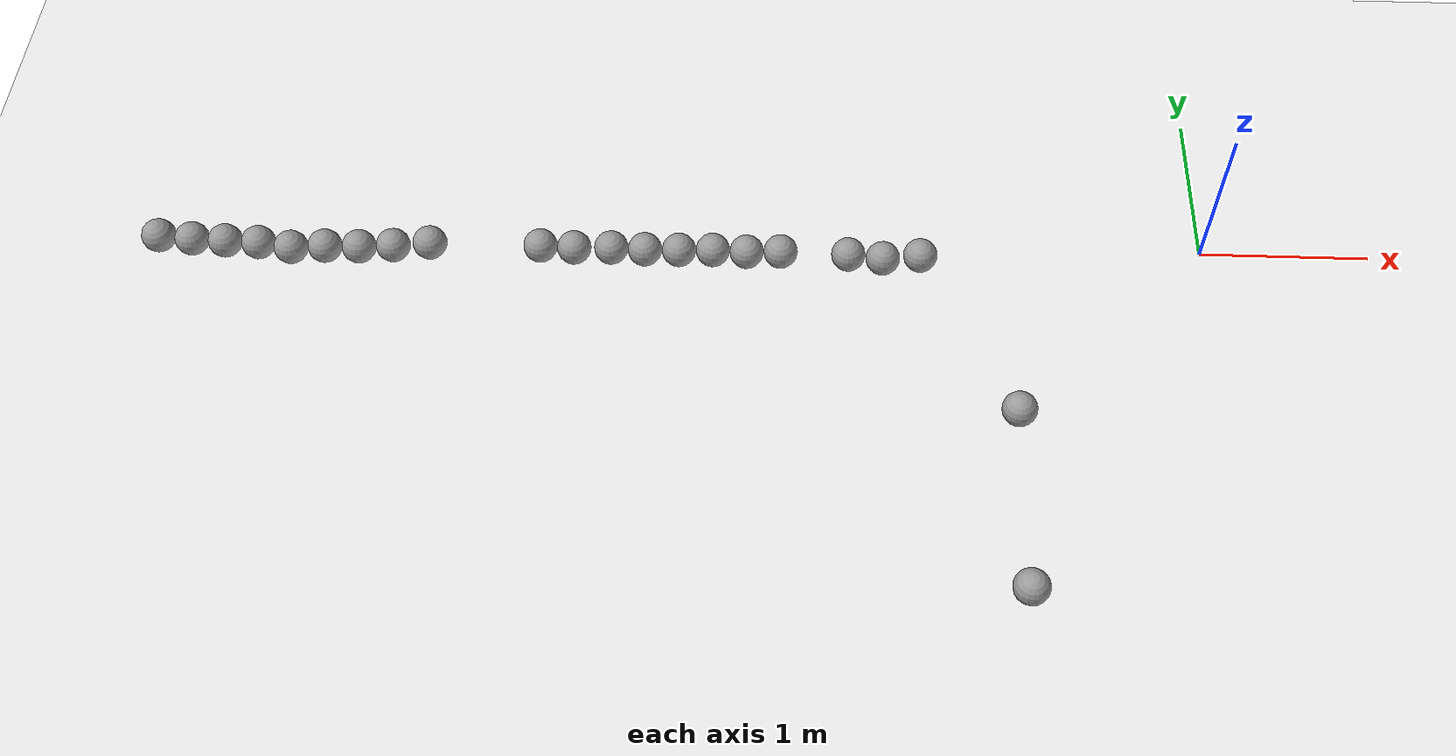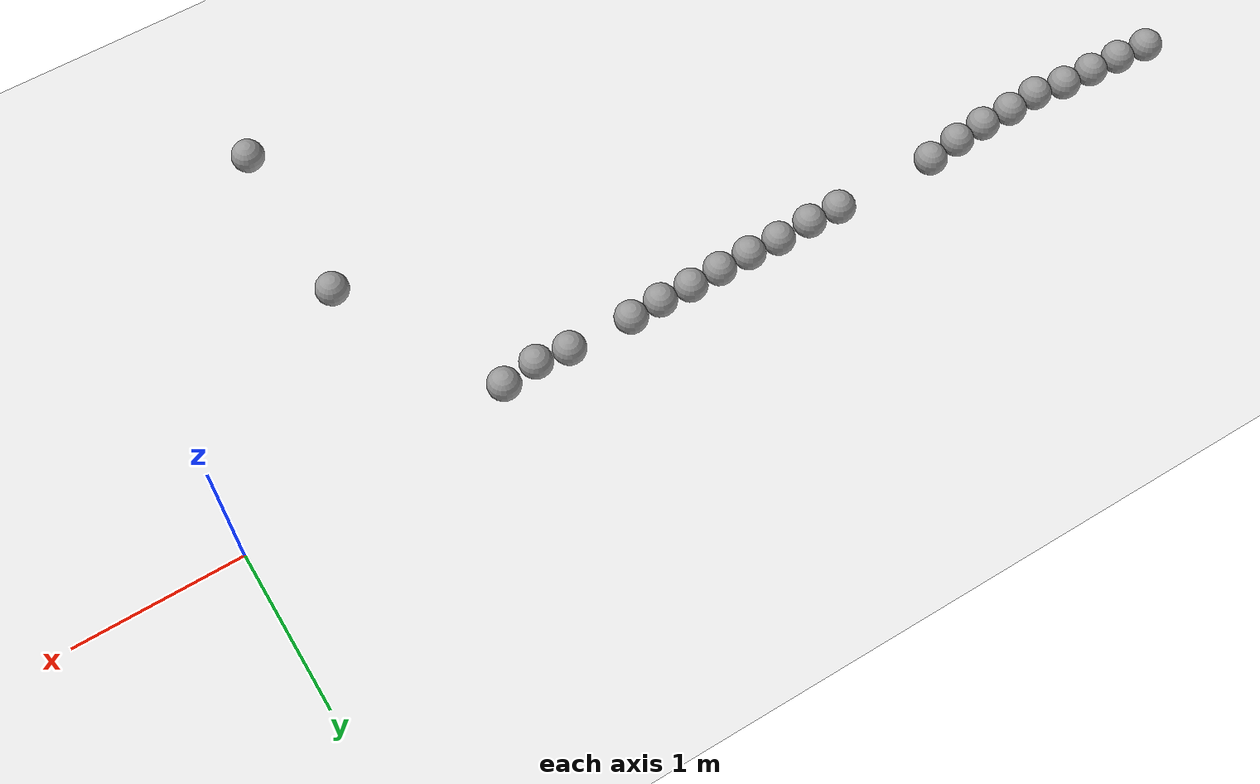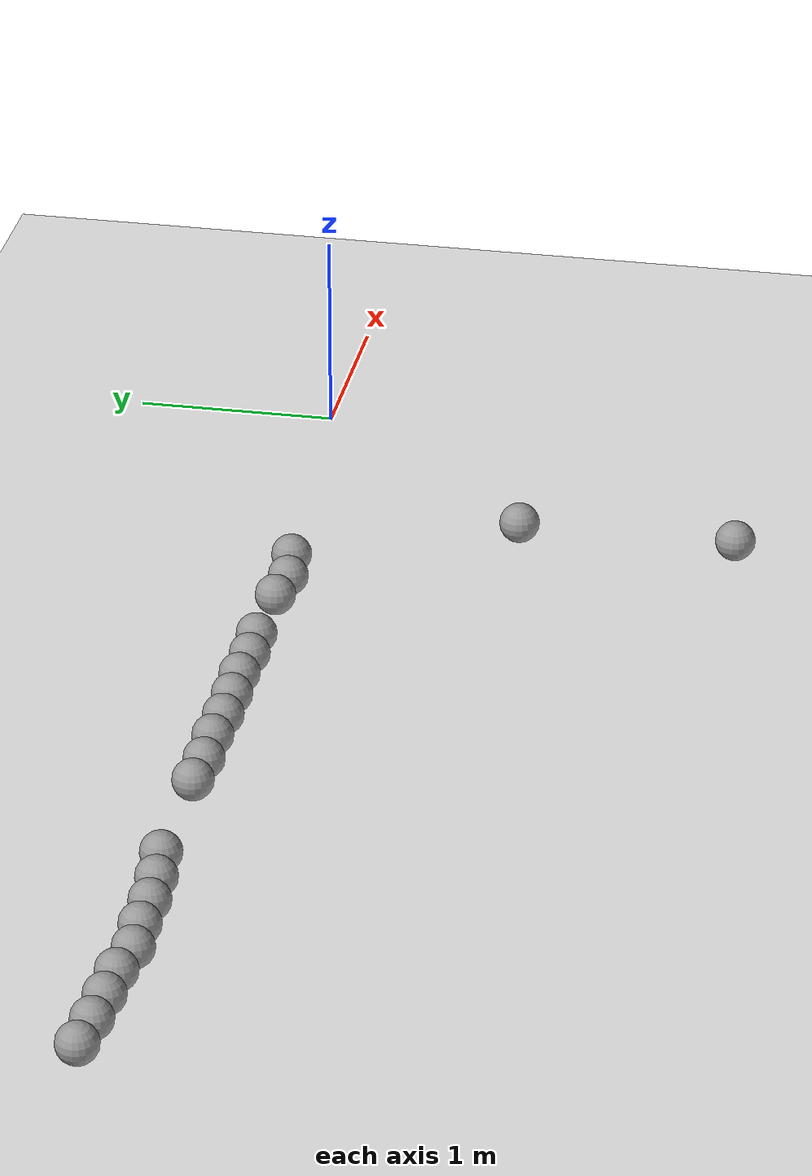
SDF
<sdf version="1.7">
 <world name="default">
  <model name="ground_plane">
   <static>1</static>
   <link name="link">
    <collision name="collision">
     <geometry><plane><normal>0 0 1</normal><size>100 100</size></plane></geometry>
     <surface>
      <contact><collide_bitmask>65535</collide_bitmask></contact>
      <friction><ode><mu>100</mu><mu2>50</mu2></ode></friction>
     </surface>
    </collision>
    <visual name="visual">
     <cast_shadows>0</cast_shadows>
     <geometry><plane><normal>0 0 1</normal><size>100 100</size></plane></geometry>
     <material>
      <script><uri>file://media/materials/scripts/gazebo.material</uri><name>Gazebo/White</name></script>
     </material>
    </visual>
   </link>
  </model>
  <model name="sphere_58">
   <link name="link_0">
    <inertial>
     <mass>1</mass>
     <inertia><ixx>0.1</ixx><ixy>0</ixy><ixz>0</ixz><iyy>0.1</iyy><iyz>0</iyz><izz>0.1</izz></inertia>
    </inertial>
    <visual name="visual">
     <geometry><sphere><radius>0.1</radius></sphere></geometry>
     <material>
      <lighting>1</lighting>
      <script><uri>file://media/materials/scripts/gazebo.material</uri><name>Gazebo/Grey</name></script>
      <shader type="pixel"><normal_map>__default__</normal_map></shader>
      <ambient>0.3 0.3 0.3 1</ambient>
      <diffuse>0.7 0.7 0.7 1</diffuse>
      <specular>0.01 0.01 0.01 1</specular>
      <emissive>0 0 0 1</emissive>
     </material>
    </visual>
    <collision name="collision">
     <geometry><sphere><radius>0.1</radius></sphere></geometry>
     <surface>
      <friction>
       <ode><mu>1</mu><mu2>1</mu2><fdir1>0 0 0</fdir1><slip1>0</slip1><slip2>0</slip2></ode>
       <torsional>
        <coefficient>1</coefficient>
        <patch_radius>0</patch_radius>
        <surface_radius>0</surface_radius>
        <use_patch_radius>1</use_patch_radius>
        <ode><slip>0</slip></ode>
       </torsional>
      </friction>
      <bounce><restitution_coefficient>0</restitution_coefficient><threshold>1e+06</threshold></bounce>
      <contact>
       <collide_without_contact>0</collide_without_contact>
       <collide_without_contact_bitmask>1</collide_without_contact_bitmask>
       <collide_bitmask>1</collide_bitmask>
       <ode>
        <soft_cfm>0</soft_cfm>
        <soft_erp>0.2</soft_erp>
        <kp>1e+13</kp>
        <kd>1</kd>
        <max_vel>0.01</max_vel>
        <min_depth>0</min_depth>
       </ode>
       <bullet>
        <split_impulse>1</split_impulse>
        <split_impulse_penetration_threshold>-0.01</split_impulse_penetration_threshold>
        <soft_cfm>0</soft_cfm>
        <soft_erp>0.2</soft_erp>
        <kp>1e+13</kp>
        <kd>1</kd>
       </bullet>
      </contact>
     </surface>
    </collision>
   </link>
   <static>0</static>
   <pose>-6.19344 -0.126974 0.1 -0.008141 -0.084129 0.001427</pose>
  </model>
  <model name="sphere_59">
   <link name="link_0">
    <inertial>
     <mass>1</mass>
     <inertia><ixx>0.1</ixx><ixy>0</ixy><ixz>0</ixz><iyy>0.1</iyy><iyz>0</iyz><izz>0.1</izz></inertia>
    </inertial>
    <visual name="visual">
     <geometry><sphere><radius>0.1</radius></sphere></geometry>
     <material>
      <lighting>1</lighting>
      <script><uri>file://media/materials/scripts/gazebo.material</uri><name>Gazebo/Grey</name></script>
      <shader type="pixel"><normal_map>__default__</normal_map></shader>
      <ambient>0.3 0.3 0.3 1</ambient>
      <diffuse>0.7 0.7 0.7 1</diffuse>
      <specular>0.01 0.01 0.01 1</specular>
      <emissive>0 0 0 1</emissive>
     </material>
    </visual>
    <collision name="collision">
     <geometry><sphere><radius>0.1</radius></sphere></geometry>
     <surface>
      <friction>
       <ode><mu>1</mu><mu2>1</mu2><fdir1>0 0 0</fdir1><slip1>0</slip1><slip2>0</slip2></ode>
       <torsional>
        <coefficient>1</coefficient>
        <patch_radius>0</patch_radius>
        <surface_radius>0</surface_radius>
        <use_patch_radius>1</use_patch_radius>
        <ode><slip>0</slip></ode>
       </torsional>
      </friction>
      <bounce><restitution_coefficient>0</restitution_coefficient><threshold>1e+06</threshold></bounce>
      <contact>
       <collide_without_contact>0</collide_without_contact>
       <collide_without_contact_bitmask>1</collide_without_contact_bitmask>
       <collide_bitmask>1</collide_bitmask>
       <ode>
        <soft_cfm>0</soft_cfm>
        <soft_erp>0.2</soft_erp>
        <kp>1e+13</kp>
        <kd>1</kd>
        <max_vel>0.01</max_vel>
        <min_depth>0</min_depth>
       </ode>
       <bullet>
        <split_impulse>1</split_impulse>
        <split_impulse_penetration_threshold>-0.01</split_impulse_penetration_threshold>
        <soft_cfm>0</soft_cfm>
        <soft_erp>0.2</soft_erp>
        <kp>1e+13</kp>
        <kd>1</kd>
       </bullet>
      </contact>
     </surface>
    </collision>
   </link>
   <static>0</static>
   <pose>-5.99033 -0.144147 0.1 0.008022 0.014841 0.00236</pose>
  </model>
  <model name="sphere_60">
   <link name="link_0">
    <inertial>
     <mass>1</mass>
     <inertia><ixx>0.1</ixx><ixy>0</ixy><ixz>0</ixz><iyy>0.1</iyy><iyz>0</iyz><izz>0.1</izz></inertia>
    </inertial>
    <visual name="visual">
     <geometry><sphere><radius>0.1</radius></sphere></geometry>
     <material>
      <lighting>1</lighting>
      <script><uri>file://media/materials/scripts/gazebo.material</uri><name>Gazebo/Grey</name></script>
      <shader type="pixel"><normal_map>__default__</normal_map></shader>
      <ambient>0.3 0.3 0.3 1</ambient>
      <diffuse>0.7 0.7 0.7 1</diffuse>
      <specular>0.01 0.01 0.01 1</specular>
      <emissive>0 0 0 1</emissive>
     </material>
    </visual>
    <collision name="collision">
     <geometry><sphere><radius>0.1</radius></sphere></geometry>
     <surface>
      <friction>
       <ode><mu>1</mu><mu2>1</mu2><fdir1>0 0 0</fdir1><slip1>0</slip1><slip2>0</slip2></ode>
       <torsional>
        <coefficient>1</coefficient>
        <patch_radius>0</patch_radius>
        <surface_radius>0</surface_radius>
        <use_patch_radius>1</use_patch_radius>
        <ode><slip>0</slip></ode>
       </torsional>
      </friction>
      <bounce><restitution_coefficient>0</restitution_coefficient><threshold>1e+06</threshold></bounce>
      <contact>
       <collide_without_contact>0</collide_without_contact>
       <collide_without_contact_bitmask>1</collide_without_contact_bitmask>
       <collide_bitmask>1</collide_bitmask>
       <ode>
        <soft_cfm>0</soft_cfm>
        <soft_erp>0.2</soft_erp>
        <kp>1e+13</kp>
        <kd>1</kd>
        <max_vel>0.01</max_vel>
        <min_depth>0</min_depth>
       </ode>
       <bullet>
        <split_impulse>1</split_impulse>
        <split_impulse_penetration_threshold>-0.01</split_impulse_penetration_threshold>
        <soft_cfm>0</soft_cfm>
        <soft_erp>0.2</soft_erp>
        <kp>1e+13</kp>
        <kd>1</kd>
       </bullet>
      </contact>
     </surface>
    </collision>
   </link>
   <static>0</static>
   <pose>-5.7905 -0.152915 0.1 -0.002952 0.010241 0.009246</pose>
  </model>
  <model name="sphere_61">
   <link name="link_0">
    <inertial>
     <mass>1</mass>
     <inertia><ixx>0.1</ixx><ixy>0</ixy><ixz>0</ixz><iyy>0.1</iyy><iyz>0</iyz><izz>0.1</izz></inertia>
    </inertial>
    <visual name="visual">
     <geometry><sphere><radius>0.1</radius></sphere></geometry>
     <material>
      <lighting>1</lighting>
      <script><uri>file://media/materials/scripts/gazebo.material</uri><name>Gazebo/Grey</name></script>
      <shader type="pixel"><normal_map>__default__</normal_map></shader>
      <ambient>0.3 0.3 0.3 1</ambient>
      <diffuse>0.7 0.7 0.7 1</diffuse>
      <specular>0.01 0.01 0.01 1</specular>
      <emissive>0 0 0 1</emissive>
     </material>
    </visual>
    <collision name="collision">
     <geometry><sphere><radius>0.1</radius></sphere></geometry>
     <surface>
      <friction>
       <ode><mu>1</mu><mu2>1</mu2><fdir1>0 0 0</fdir1><slip1>0</slip1><slip2>0</slip2></ode>
       <torsional>
        <coefficient>1</coefficient>
        <patch_radius>0</patch_radius>
        <surface_radius>0</surface_radius>
        <use_patch_radius>1</use_patch_radius>
        <ode><slip>0</slip></ode>
       </torsional>
      </friction>
      <bounce><restitution_coefficient>0</restitution_coefficient><threshold>1e+06</threshold></bounce>
      <contact>
       <collide_without_contact>0</collide_without_contact>
       <collide_without_contact_bitmask>1</collide_without_contact_bitmask>
       <collide_bitmask>1</collide_bitmask>
       <ode>
        <soft_cfm>0</soft_cfm>
        <soft_erp>0.2</soft_erp>
        <kp>1e+13</kp>
        <kd>1</kd>
        <max_vel>0.01</max_vel>
        <min_depth>0</min_depth>
       </ode>
       <bullet>
        <split_impulse>1</split_impulse>
        <split_impulse_penetration_threshold>-0.01</split_impulse_penetration_threshold>
        <soft_cfm>0</soft_cfm>
        <soft_erp>0.2</soft_erp>
        <kp>1e+13</kp>
        <kd>1</kd>
       </bullet>
      </contact>
     </surface>
    </collision>
   </link>
   <static>0</static>
   <pose>-5.59059 -0.159502 0.1 -0.003765 0.022062 -0.008673</pose>
  </model>
  <model name="sphere_62">
   <link name="link_0">
    <inertial>
     <mass>1</mass>
     <inertia><ixx>0.1</ixx><ixy>0</ixy><ixz>0</ixz><iyy>0.1</iyy><iyz>0</iyz><izz>0.1</izz></inertia>
    </inertial>
    <visual name="visual">
     <geometry><sphere><radius>0.1</radius></sphere></geometry>
     <material>
      <lighting>1</lighting>
      <script><uri>file://media/materials/scripts/gazebo.material</uri><name>Gazebo/Grey</name></script>
      <shader type="pixel"><normal_map>__default__</normal_map></shader>
      <ambient>0.3 0.3 0.3 1</ambient>
      <diffuse>0.7 0.7 0.7 1</diffuse>
      <specular>0.01 0.01 0.01 1</specular>
      <emissive>0 0 0 1</emissive>
     </material>
    </visual>
    <collision name="collision">
     <geometry><sphere><radius>0.1</radius></sphere></geometry>
     <surface>
      <friction>
       <ode><mu>1</mu><mu2>1</mu2><fdir1>0 0 0</fdir1><slip1>0</slip1><slip2>0</slip2></ode>
       <torsional>
        <coefficient>1</coefficient>
        <patch_radius>0</patch_radius>
        <surface_radius>0</surface_radius>
        <use_patch_radius>1</use_patch_radius>
        <ode><slip>0</slip></ode>
       </torsional>
      </friction>
      <bounce><restitution_coefficient>0</restitution_coefficient><threshold>1e+06</threshold></bounce>
      <contact>
       <collide_without_contact>0</collide_without_contact>
       <collide_without_contact_bitmask>1</collide_without_contact_bitmask>
       <collide_bitmask>1</collide_bitmask>
       <ode>
        <soft_cfm>0</soft_cfm>
        <soft_erp>0.2</soft_erp>
        <kp>1e+13</kp>
        <kd>1</kd>
        <max_vel>0.01</max_vel>
        <min_depth>0</min_depth>
       </ode>
       <bullet>
        <split_impulse>1</split_impulse>
        <split_impulse_penetration_threshold>-0.01</split_impulse_penetration_threshold>
        <soft_cfm>0</soft_cfm>
        <soft_erp>0.2</soft_erp>
        <kp>1e+13</kp>
        <kd>1</kd>
       </bullet>
      </contact>
     </surface>
    </collision>
   </link>
   <static>0</static>
   <pose>-5.39257 -0.188681 0.1 0.008509 0.017596 -0.00558</pose>
  </model>
  <model name="sphere_63">
   <link name="link_0">
    <inertial>
     <mass>1</mass>
     <inertia><ixx>0.1</ixx><ixy>0</ixy><ixz>0</ixz><iyy>0.1</iyy><iyz>0</iyz><izz>0.1</izz></inertia>
    </inertial>
    <visual name="visual">
     <geometry><sphere><radius>0.1</radius></sphere></geometry>
     <material>
      <lighting>1</lighting>
      <script><uri>file://media/materials/scripts/gazebo.material</uri><name>Gazebo/Grey</name></script>
      <shader type="pixel"><normal_map>__default__</normal_map></shader>
      <ambient>0.3 0.3 0.3 1</ambient>
      <diffuse>0.7 0.7 0.7 1</diffuse>
      <specular>0.01 0.01 0.01 1</specular>
      <emissive>0 0 0 1</emissive>
     </material>
    </visual>
    <collision name="collision">
     <geometry><sphere><radius>0.1</radius></sphere></geometry>
     <surface>
      <friction>
       <ode><mu>1</mu><mu2>1</mu2><fdir1>0 0 0</fdir1><slip1>0</slip1><slip2>0</slip2></ode>
       <torsional>
        <coefficient>1</coefficient>
        <patch_radius>0</patch_radius>
        <surface_radius>0</surface_radius>
        <use_patch_radius>1</use_patch_radius>
        <ode><slip>0</slip></ode>
       </torsional>
      </friction>
      <bounce><restitution_coefficient>0</restitution_coefficient><threshold>1e+06</threshold></bounce>
      <contact>
       <collide_without_contact>0</collide_without_contact>
       <collide_without_contact_bitmask>1</collide_without_contact_bitmask>
       <collide_bitmask>1</collide_bitmask>
       <ode>
        <soft_cfm>0</soft_cfm>
        <soft_erp>0.2</soft_erp>
        <kp>1e+13</kp>
        <kd>1</kd>
        <max_vel>0.01</max_vel>
        <min_depth>0</min_depth>
       </ode>
       <bullet>
        <split_impulse>1</split_impulse>
        <split_impulse_penetration_threshold>-0.01</split_impulse_penetration_threshold>
        <soft_cfm>0</soft_cfm>
        <soft_erp>0.2</soft_erp>
        <kp>1e+13</kp>
        <kd>1</kd>
       </bullet>
      </contact>
     </surface>
    </collision>
   </link>
   <static>0</static>
   <pose>-5.19303 -0.173552 0.1 -0.000522 0.009573 0.008883</pose>
  </model>
  <model name="sphere_64">
   <link name="link_0">
    <inertial>
     <mass>1</mass>
     <inertia><ixx>0.1</ixx><ixy>0</ixy><ixz>0</ixz><iyy>0.1</iyy><iyz>0</iyz><izz>0.1</izz></inertia>
    </inertial>
    <visual name="visual">
     <geometry><sphere><radius>0.1</radius></sphere></geometry>
     <material>
      <lighting>1</lighting>
      <script><uri>file://media/materials/scripts/gazebo.material</uri><name>Gazebo/Grey</name></script>
      <shader type="pixel"><normal_map>__default__</normal_map></shader>
      <ambient>0.3 0.3 0.3 1</ambient>
      <diffuse>0.7 0.7 0.7 1</diffuse>
      <specular>0.01 0.01 0.01 1</specular>
      <emissive>0 0 0 1</emissive>
     </material>
    </visual>
    <collision name="collision">
     <geometry><sphere><radius>0.1</radius></sphere></geometry>
     <surface>
      <friction>
       <ode><mu>1</mu><mu2>1</mu2><fdir1>0 0 0</fdir1><slip1>0</slip1><slip2>0</slip2></ode>
       <torsional>
        <coefficient>1</coefficient>
        <patch_radius>0</patch_radius>
        <surface_radius>0</surface_radius>
        <use_patch_radius>1</use_patch_radius>
        <ode><slip>0</slip></ode>
       </torsional>
      </friction>
      <bounce><restitution_coefficient>0</restitution_coefficient><threshold>1e+06</threshold></bounce>
      <contact>
       <collide_without_contact>0</collide_without_contact>
       <collide_without_contact_bitmask>1</collide_without_contact_bitmask>
       <collide_bitmask>1</collide_bitmask>
       <ode>
        <soft_cfm>0</soft_cfm>
        <soft_erp>0.2</soft_erp>
        <kp>1e+13</kp>
        <kd>1</kd>
        <max_vel>0.01</max_vel>
        <min_depth>0</min_depth>
       </ode>
       <bullet>
        <split_impulse>1</split_impulse>
        <split_impulse_penetration_threshold>-0.01</split_impulse_penetration_threshold>
        <soft_cfm>0</soft_cfm>
        <soft_erp>0.2</soft_erp>
        <kp>1e+13</kp>
        <kd>1</kd>
       </bullet>
      </contact>
     </surface>
    </collision>
   </link>
   <static>0</static>
   <pose>-4.99053 -0.171876 0.1 -0.00174 0.052291 -0.002171</pose>
  </model>
  <model name="sphere_65">
   <link name="link_0">
    <inertial>
     <mass>1</mass>
     <inertia><ixx>0.1</ixx><ixy>0</ixy><ixz>0</ixz><iyy>0.1</iyy><iyz>0</iyz><izz>0.1</izz></inertia>
    </inertial>
    <visual name="visual">
     <geometry><sphere><radius>0.1</radius></sphere></geometry>
     <material>
      <lighting>1</lighting>
      <script><uri>file://media/materials/scripts/gazebo.material</uri><name>Gazebo/Grey</name></script>
      <shader type="pixel"><normal_map>__default__</normal_map></shader>
      <ambient>0.3 0.3 0.3 1</ambient>
      <diffuse>0.7 0.7 0.7 1</diffuse>
      <specular>0.01 0.01 0.01 1</specular>
      <emissive>0 0 0 1</emissive>
     </material>
    </visual>
    <collision name="collision">
     <geometry><sphere><radius>0.1</radius></sphere></geometry>
     <surface>
      <friction>
       <ode><mu>1</mu><mu2>1</mu2><fdir1>0 0 0</fdir1><slip1>0</slip1><slip2>0</slip2></ode>
       <torsional>
        <coefficient>1</coefficient>
        <patch_radius>0</patch_radius>
        <surface_radius>0</surface_radius>
        <use_patch_radius>1</use_patch_radius>
        <ode><slip>0</slip></ode>
       </torsional>
      </friction>
      <bounce><restitution_coefficient>0</restitution_coefficient><threshold>1e+06</threshold></bounce>
      <contact>
       <collide_without_contact>0</collide_without_contact>
       <collide_without_contact_bitmask>1</collide_without_contact_bitmask>
       <collide_bitmask>1</collide_bitmask>
       <ode>
        <soft_cfm>0</soft_cfm>
        <soft_erp>0.2</soft_erp>
        <kp>1e+13</kp>
        <kd>1</kd>
        <max_vel>0.01</max_vel>
        <min_depth>0</min_depth>
       </ode>
       <bullet>
        <split_impulse>1</split_impulse>
        <split_impulse_penetration_threshold>-0.01</split_impulse_penetration_threshold>
        <soft_cfm>0</soft_cfm>
        <soft_erp>0.2</soft_erp>
        <kp>1e+13</kp>
        <kd>1</kd>
       </bullet>
      </contact>
     </surface>
    </collision>
   </link>
   <static>0</static>
   <pose>-4.78944 -0.156466 0.1 -0.000672 0.008773 -7e-06</pose>
  </model>
  <model name="sphere_66">
   <link name="link_0">
    <inertial>
     <mass>1</mass>
     <inertia><ixx>0.1</ixx><ixy>0</ixy><ixz>0</ixz><iyy>0.1</iyy><iyz>0</iyz><izz>0.1</izz></inertia>
    </inertial>
    <visual name="visual">
     <geometry><sphere><radius>0.1</radius></sphere></geometry>
     <material>
      <lighting>1</lighting>
      <script><uri>file://media/materials/scripts/gazebo.material</uri><name>Gazebo/Grey</name></script>
      <shader type="pixel"><normal_map>__default__</normal_map></shader>
      <ambient>0.3 0.3 0.3 1</ambient>
      <diffuse>0.7 0.7 0.7 1</diffuse>
      <specular>0.01 0.01 0.01 1</specular>
      <emissive>0 0 0 1</emissive>
     </material>
    </visual>
    <collision name="collision">
     <geometry><sphere><radius>0.1</radius></sphere></geometry>
     <surface>
      <friction>
       <ode><mu>1</mu><mu2>1</mu2><fdir1>0 0 0</fdir1><slip1>0</slip1><slip2>0</slip2></ode>
       <torsional>
        <coefficient>1</coefficient>
        <patch_radius>0</patch_radius>
        <surface_radius>0</surface_radius>
        <use_patch_radius>1</use_patch_radius>
        <ode><slip>0</slip></ode>
       </torsional>
      </friction>
      <bounce><restitution_coefficient>0</restitution_coefficient><threshold>1e+06</threshold></bounce>
      <contact>
       <collide_without_contact>0</collide_without_contact>
       <collide_without_contact_bitmask>1</collide_without_contact_bitmask>
       <collide_bitmask>1</collide_bitmask>
       <ode>
        <soft_cfm>0</soft_cfm>
        <soft_erp>0.2</soft_erp>
        <kp>1e+13</kp>
        <kd>1</kd>
        <max_vel>0.01</max_vel>
        <min_depth>0</min_depth>
       </ode>
       <bullet>
        <split_impulse>1</split_impulse>
        <split_impulse_penetration_threshold>-0.01</split_impulse_penetration_threshold>
        <soft_cfm>0</soft_cfm>
        <soft_erp>0.2</soft_erp>
        <kp>1e+13</kp>
        <kd>1</kd>
       </bullet>
      </contact>
     </surface>
    </collision>
   </link>
   <static>0</static>
   <pose>-4.57596 -0.129595 0.1 0 -0 0</pose>
  </model>
  <model name="sphere_69">
   <link name="link_0">
    <inertial>
     <mass>1</mass>
     <inertia><ixx>0.1</ixx><ixy>0</ixy><ixz>0</ixz><iyy>0.1</iyy><iyz>0</iyz><izz>0.1</izz></inertia>
    </inertial>
    <visual name="visual">
     <geometry><sphere><radius>0.1</radius></sphere></geometry>
     <material>
      <lighting>1</lighting>
      <script><uri>file://media/materials/scripts/gazebo.material</uri><name>Gazebo/Grey</name></script>
      <shader type="pixel"><normal_map>__default__</normal_map></shader>
      <ambient>0.3 0.3 0.3 1</ambient>
      <diffuse>0.7 0.7 0.7 1</diffuse>
      <specular>0.01 0.01 0.01 1</specular>
      <emissive>0 0 0 1</emissive>
     </material>
    </visual>
    <collision name="collision">
     <geometry><sphere><radius>0.1</radius></sphere></geometry>
     <surface>
      <friction>
       <ode><mu>1</mu><mu2>1</mu2><fdir1>0 0 0</fdir1><slip1>0</slip1><slip2>0</slip2></ode>
       <torsional>
        <coefficient>1</coefficient>
        <patch_radius>0</patch_radius>
        <surface_radius>0</surface_radius>
        <use_patch_radius>1</use_patch_radius>
        <ode><slip>0</slip></ode>
       </torsional>
      </friction>
      <bounce><restitution_coefficient>0</restitution_coefficient><threshold>1e+06</threshold></bounce>
      <contact>
       <collide_without_contact>0</collide_without_contact>
       <collide_without_contact_bitmask>1</collide_without_contact_bitmask>
       <collide_bitmask>1</collide_bitmask>
       <ode>
        <soft_cfm>0</soft_cfm>
        <soft_erp>0.2</soft_erp>
        <kp>1e+13</kp>
        <kd>1</kd>
        <max_vel>0.01</max_vel>
        <min_depth>0</min_depth>
       </ode>
       <bullet>
        <split_impulse>1</split_impulse>
        <split_impulse_penetration_threshold>-0.01</split_impulse_penetration_threshold>
        <soft_cfm>0</soft_cfm>
        <soft_erp>0.2</soft_erp>
        <kp>1e+13</kp>
        <kd>1</kd>
       </bullet>
      </contact>
     </surface>
    </collision>
   </link>
   <static>0</static>
   <pose>-3.91819 -0.131518 0.1 0 -0 0</pose>
  </model>
  <model name="sphere_70">
   <link name="link_0">
    <inertial>
     <mass>1</mass>
     <inertia><ixx>0.1</ixx><ixy>0</ixy><ixz>0</ixz><iyy>0.1</iyy><iyz>0</iyz><izz>0.1</izz></inertia>
    </inertial>
    <visual name="visual">
     <geometry><sphere><radius>0.1</radius></sphere></geometry>
     <material>
      <lighting>1</lighting>
      <script><uri>file://media/materials/scripts/gazebo.material</uri><name>Gazebo/Grey</name></script>
      <shader type="pixel"><normal_map>__default__</normal_map></shader>
      <ambient>0.3 0.3 0.3 1</ambient>
      <diffuse>0.7 0.7 0.7 1</diffuse>
      <specular>0.01 0.01 0.01 1</specular>
      <emissive>0 0 0 1</emissive>
     </material>
    </visual>
    <collision name="collision">
     <geometry><sphere><radius>0.1</radius></sphere></geometry>
     <surface>
      <friction>
       <ode><mu>1</mu><mu2>1</mu2><fdir1>0 0 0</fdir1><slip1>0</slip1><slip2>0</slip2></ode>
       <torsional>
        <coefficient>1</coefficient>
        <patch_radius>0</patch_radius>
        <surface_radius>0</surface_radius>
        <use_patch_radius>1</use_patch_radius>
        <ode><slip>0</slip></ode>
       </torsional>
      </friction>
      <bounce><restitution_coefficient>0</restitution_coefficient><threshold>1e+06</threshold></bounce>
      <contact>
       <collide_without_contact>0</collide_without_contact>
       <collide_without_contact_bitmask>1</collide_without_contact_bitmask>
       <collide_bitmask>1</collide_bitmask>
       <ode>
        <soft_cfm>0</soft_cfm>
        <soft_erp>0.2</soft_erp>
        <kp>1e+13</kp>
        <kd>1</kd>
        <max_vel>0.01</max_vel>
        <min_depth>0</min_depth>
       </ode>
       <bullet>
        <split_impulse>1</split_impulse>
        <split_impulse_penetration_threshold>-0.01</split_impulse_penetration_threshold>
        <soft_cfm>0</soft_cfm>
        <soft_erp>0.2</soft_erp>
        <kp>1e+13</kp>
        <kd>1</kd>
       </bullet>
      </contact>
     </surface>
    </collision>
   </link>
   <static>0</static>
   <pose>-3.71752 -0.139688 0.1 0 -0 0</pose>
  </model>
  <model name="sphere_71">
   <link name="link_0">
    <inertial>
     <mass>1</mass>
     <inertia><ixx>0.1</ixx><ixy>0</ixy><ixz>0</ixz><iyy>0.1</iyy><iyz>0</iyz><izz>0.1</izz></inertia>
    </inertial>
    <visual name="visual">
     <geometry><sphere><radius>0.1</radius></sphere></geometry>
     <material>
      <lighting>1</lighting>
      <script><uri>file://media/materials/scripts/gazebo.material</uri><name>Gazebo/Grey</name></script>
      <shader type="pixel"><normal_map>__default__</normal_map></shader>
      <ambient>0.3 0.3 0.3 1</ambient>
      <diffuse>0.7 0.7 0.7 1</diffuse>
      <specular>0.01 0.01 0.01 1</specular>
      <emissive>0 0 0 1</emissive>
     </material>
    </visual>
    <collision name="collision">
     <geometry><sphere><radius>0.1</radius></sphere></geometry>
     <surface>
      <friction>
       <ode><mu>1</mu><mu2>1</mu2><fdir1>0 0 0</fdir1><slip1>0</slip1><slip2>0</slip2></ode>
       <torsional>
        <coefficient>1</coefficient>
        <patch_radius>0</patch_radius>
        <surface_radius>0</surface_radius>
        <use_patch_radius>1</use_patch_radius>
        <ode><slip>0</slip></ode>
       </torsional>
      </friction>
      <bounce><restitution_coefficient>0</restitution_coefficient><threshold>1e+06</threshold></bounce>
      <contact>
       <collide_without_contact>0</collide_without_contact>
       <collide_without_contact_bitmask>1</collide_without_contact_bitmask>
       <collide_bitmask>1</collide_bitmask>
       <ode>
        <soft_cfm>0</soft_cfm>
        <soft_erp>0.2</soft_erp>
        <kp>1e+13</kp>
        <kd>1</kd>
        <max_vel>0.01</max_vel>
        <min_depth>0</min_depth>
       </ode>
       <bullet>
        <split_impulse>1</split_impulse>
        <split_impulse_penetration_threshold>-0.01</split_impulse_penetration_threshold>
        <soft_cfm>0</soft_cfm>
        <soft_erp>0.2</soft_erp>
        <kp>1e+13</kp>
        <kd>1</kd>
       </bullet>
      </contact>
     </surface>
    </collision>
   </link>
   <static>0</static>
   <pose>-3.49865 -0.13337 0.1 -0.000216 -0.008715 -8.7e-05</pose>
  </model>
  <model name="sphere_72">
   <link name="link_0">
    <inertial>
     <mass>1</mass>
     <inertia><ixx>0.1</ixx><ixy>0</ixy><ixz>0</ixz><iyy>0.1</iyy><iyz>0</iyz><izz>0.1</izz></inertia>
    </inertial>
    <visual name="visual">
     <geometry><sphere><radius>0.1</radius></sphere></geometry>
     <material>
      <lighting>1</lighting>
      <script><uri>file://media/materials/scripts/gazebo.material</uri><name>Gazebo/Grey</name></script>
      <shader type="pixel"><normal_map>__default__</normal_map></shader>
      <ambient>0.3 0.3 0.3 1</ambient>
      <diffuse>0.7 0.7 0.7 1</diffuse>
      <specular>0.01 0.01 0.01 1</specular>
      <emissive>0 0 0 1</emissive>
     </material>
    </visual>
    <collision name="collision">
     <geometry><sphere><radius>0.1</radius></sphere></geometry>
     <surface>
      <friction>
       <ode><mu>1</mu><mu2>1</mu2><fdir1>0 0 0</fdir1><slip1>0</slip1><slip2>0</slip2></ode>
       <torsional>
        <coefficient>1</coefficient>
        <patch_radius>0</patch_radius>
        <surface_radius>0</surface_radius>
        <use_patch_radius>1</use_patch_radius>
        <ode><slip>0</slip></ode>
       </torsional>
      </friction>
      <bounce><restitution_coefficient>0</restitution_coefficient><threshold>1e+06</threshold></bounce>
      <contact>
       <collide_without_contact>0</collide_without_contact>
       <collide_without_contact_bitmask>1</collide_without_contact_bitmask>
       <collide_bitmask>1</collide_bitmask>
       <ode>
        <soft_cfm>0</soft_cfm>
        <soft_erp>0.2</soft_erp>
        <kp>1e+13</kp>
        <kd>1</kd>
        <max_vel>0.01</max_vel>
        <min_depth>0</min_depth>
       </ode>
       <bullet>
        <split_impulse>1</split_impulse>
        <split_impulse_penetration_threshold>-0.01</split_impulse_penetration_threshold>
        <soft_cfm>0</soft_cfm>
        <soft_erp>0.2</soft_erp>
        <kp>1e+13</kp>
        <kd>1</kd>
       </bullet>
      </contact>
     </surface>
    </collision>
   </link>
   <static>0</static>
   <pose>-3.29875 -0.140119 0.1 0.000993 -0.008085 -0.000462</pose>
  </model>
  <model name="sphere_73">
   <link name="link_0">
    <inertial>
     <mass>1</mass>
     <inertia><ixx>0.1</ixx><ixy>0</ixy><ixz>0</ixz><iyy>0.1</iyy><iyz>0</iyz><izz>0.1</izz></inertia>
    </inertial>
    <visual name="visual">
     <geometry><sphere><radius>0.1</radius></sphere></geometry>
     <material>
      <lighting>1</lighting>
      <script><uri>file://media/materials/scripts/gazebo.material</uri><name>Gazebo/Grey</name></script>
      <shader type="pixel"><normal_map>__default__</normal_map></shader>
      <ambient>0.3 0.3 0.3 1</ambient>
      <diffuse>0.7 0.7 0.7 1</diffuse>
      <specular>0.01 0.01 0.01 1</specular>
      <emissive>0 0 0 1</emissive>
     </material>
    </visual>
    <collision name="collision">
     <geometry><sphere><radius>0.1</radius></sphere></geometry>
     <surface>
      <friction>
       <ode><mu>1</mu><mu2>1</mu2><fdir1>0 0 0</fdir1><slip1>0</slip1><slip2>0</slip2></ode>
       <torsional>
        <coefficient>1</coefficient>
        <patch_radius>0</patch_radius>
        <surface_radius>0</surface_radius>
        <use_patch_radius>1</use_patch_radius>
        <ode><slip>0</slip></ode>
       </torsional>
      </friction>
      <bounce><restitution_coefficient>0</restitution_coefficient><threshold>1e+06</threshold></bounce>
      <contact>
       <collide_without_contact>0</collide_without_contact>
       <collide_without_contact_bitmask>1</collide_without_contact_bitmask>
       <collide_bitmask>1</collide_bitmask>
       <ode>
        <soft_cfm>0</soft_cfm>
        <soft_erp>0.2</soft_erp>
        <kp>1e+13</kp>
        <kd>1</kd>
        <max_vel>0.01</max_vel>
        <min_depth>0</min_depth>
       </ode>
       <bullet>
        <split_impulse>1</split_impulse>
        <split_impulse_penetration_threshold>-0.01</split_impulse_penetration_threshold>
        <soft_cfm>0</soft_cfm>
        <soft_erp>0.2</soft_erp>
        <kp>1e+13</kp>
        <kd>1</kd>
       </bullet>
      </contact>
     </surface>
    </collision>
   </link>
   <static>0</static>
   <pose>-3.09732 -0.138766 0.1 -0.0006 -0.010294 0.001548</pose>
  </model>
  <model name="sphere_74">
   <link name="link_0">
    <inertial>
     <mass>1</mass>
     <inertia><ixx>0.1</ixx><ixy>0</ixy><ixz>0</ixz><iyy>0.1</iyy><iyz>0</iyz><izz>0.1</izz></inertia>
    </inertial>
    <visual name="visual">
     <geometry><sphere><radius>0.1</radius></sphere></geometry>
     <material>
      <lighting>1</lighting>
      <script><uri>file://media/materials/scripts/gazebo.material</uri><name>Gazebo/Grey</name></script>
      <shader type="pixel"><normal_map>__default__</normal_map></shader>
      <ambient>0.3 0.3 0.3 1</ambient>
      <diffuse>0.7 0.7 0.7 1</diffuse>
      <specular>0.01 0.01 0.01 1</specular>
      <emissive>0 0 0 1</emissive>
     </material>
    </visual>
    <collision name="collision">
     <geometry><sphere><radius>0.1</radius></sphere></geometry>
     <surface>
      <friction>
       <ode><mu>1</mu><mu2>1</mu2><fdir1>0 0 0</fdir1><slip1>0</slip1><slip2>0</slip2></ode>
       <torsional>
        <coefficient>1</coefficient>
        <patch_radius>0</patch_radius>
        <surface_radius>0</surface_radius>
        <use_patch_radius>1</use_patch_radius>
        <ode><slip>0</slip></ode>
       </torsional>
      </friction>
      <bounce><restitution_coefficient>0</restitution_coefficient><threshold>1e+06</threshold></bounce>
      <contact>
       <collide_without_contact>0</collide_without_contact>
       <collide_without_contact_bitmask>1</collide_without_contact_bitmask>
       <collide_bitmask>1</collide_bitmask>
       <ode>
        <soft_cfm>0</soft_cfm>
        <soft_erp>0.2</soft_erp>
        <kp>1e+13</kp>
        <kd>1</kd>
        <max_vel>0.01</max_vel>
        <min_depth>0</min_depth>
       </ode>
       <bullet>
        <split_impulse>1</split_impulse>
        <split_impulse_penetration_threshold>-0.01</split_impulse_penetration_threshold>
        <soft_cfm>0</soft_cfm>
        <soft_erp>0.2</soft_erp>
        <kp>1e+13</kp>
        <kd>1</kd>
       </bullet>
      </contact>
     </surface>
    </collision>
   </link>
   <static>0</static>
   <pose>-2.89716 -0.132522 0.1 -0.000799 0.003989 -0.002526</pose>
  </model>
  <model name="sphere_75">
   <link name="link_0">
    <inertial>
     <mass>1</mass>
     <inertia><ixx>0.1</ixx><ixy>0</ixy><ixz>0</ixz><iyy>0.1</iyy><iyz>0</iyz><izz>0.1</izz></inertia>
    </inertial>
    <visual name="visual">
     <geometry><sphere><radius>0.1</radius></sphere></geometry>
     <material>
      <lighting>1</lighting>
      <script><uri>file://media/materials/scripts/gazebo.material</uri><name>Gazebo/Grey</name></script>
      <shader type="pixel"><normal_map>__default__</normal_map></shader>
      <ambient>0.3 0.3 0.3 1</ambient>
      <diffuse>0.7 0.7 0.7 1</diffuse>
      <specular>0.01 0.01 0.01 1</specular>
      <emissive>0 0 0 1</emissive>
     </material>
    </visual>
    <collision name="collision">
     <geometry><sphere><radius>0.1</radius></sphere></geometry>
     <surface>
      <friction>
       <ode><mu>1</mu><mu2>1</mu2><fdir1>0 0 0</fdir1><slip1>0</slip1><slip2>0</slip2></ode>
       <torsional>
        <coefficient>1</coefficient>
        <patch_radius>0</patch_radius>
        <surface_radius>0</surface_radius>
        <use_patch_radius>1</use_patch_radius>
        <ode><slip>0</slip></ode>
       </torsional>
      </friction>
      <bounce><restitution_coefficient>0</restitution_coefficient><threshold>1e+06</threshold></bounce>
      <contact>
       <collide_without_contact>0</collide_without_contact>
       <collide_without_contact_bitmask>1</collide_without_contact_bitmask>
       <collide_bitmask>1</collide_bitmask>
       <ode>
        <soft_cfm>0</soft_cfm>
        <soft_erp>0.2</soft_erp>
        <kp>1e+13</kp>
        <kd>1</kd>
        <max_vel>0.01</max_vel>
        <min_depth>0</min_depth>
       </ode>
       <bullet>
        <split_impulse>1</split_impulse>
        <split_impulse_penetration_threshold>-0.01</split_impulse_penetration_threshold>
        <soft_cfm>0</soft_cfm>
        <soft_erp>0.2</soft_erp>
        <kp>1e+13</kp>
        <kd>1</kd>
       </bullet>
      </contact>
     </surface>
    </collision>
   </link>
   <static>0</static>
   <pose>-2.69728 -0.139648 0.1 0.003597 -0.00304 -0.002691</pose>
  </model>
  <model name="sphere_76">
   <link name="link_0">
    <inertial>
     <mass>1</mass>
     <inertia><ixx>0.1</ixx><ixy>0</ixy><ixz>0</ixz><iyy>0.1</iyy><iyz>0</iyz><izz>0.1</izz></inertia>
    </inertial>
    <visual name="visual">
     <geometry><sphere><radius>0.1</radius></sphere></geometry>
     <material>
      <lighting>1</lighting>
      <script><uri>file://media/materials/scripts/gazebo.material</uri><name>Gazebo/Grey</name></script>
      <shader type="pixel"><normal_map>__default__</normal_map></shader>
      <ambient>0.3 0.3 0.3 1</ambient>
      <diffuse>0.7 0.7 0.7 1</diffuse>
      <specular>0.01 0.01 0.01 1</specular>
      <emissive>0 0 0 1</emissive>
     </material>
    </visual>
    <collision name="collision">
     <geometry><sphere><radius>0.1</radius></sphere></geometry>
     <surface>
      <friction>
       <ode><mu>1</mu><mu2>1</mu2><fdir1>0 0 0</fdir1><slip1>0</slip1><slip2>0</slip2></ode>
       <torsional>
        <coefficient>1</coefficient>
        <patch_radius>0</patch_radius>
        <surface_radius>0</surface_radius>
        <use_patch_radius>1</use_patch_radius>
        <ode><slip>0</slip></ode>
       </torsional>
      </friction>
      <bounce><restitution_coefficient>0</restitution_coefficient><threshold>1e+06</threshold></bounce>
      <contact>
       <collide_without_contact>0</collide_without_contact>
       <collide_without_contact_bitmask>1</collide_without_contact_bitmask>
       <collide_bitmask>1</collide_bitmask>
       <ode>
        <soft_cfm>0</soft_cfm>
        <soft_erp>0.2</soft_erp>
        <kp>1e+13</kp>
        <kd>1</kd>
        <max_vel>0.01</max_vel>
        <min_depth>0</min_depth>
       </ode>
       <bullet>
        <split_impulse>1</split_impulse>
        <split_impulse_penetration_threshold>-0.01</split_impulse_penetration_threshold>
        <soft_cfm>0</soft_cfm>
        <soft_erp>0.2</soft_erp>
        <kp>1e+13</kp>
        <kd>1</kd>
       </bullet>
      </contact>
     </surface>
    </collision>
   </link>
   <static>0</static>
   <pose>-2.49745 -0.13115 0.1 -0.001392 -0.000256 0.007001</pose>
  </model>
  <model name="sphere_78">
   <link name="link_0">
    <inertial>
     <mass>1</mass>
     <inertia><ixx>0.1</ixx><ixy>0</ixy><ixz>0</ixz><iyy>0.1</iyy><iyz>0</iyz><izz>0.1</izz></inertia>
    </inertial>
    <visual name="visual">
     <geometry><sphere><radius>0.1</radius></sphere></geometry>
     <material>
      <lighting>1</lighting>
      <script><uri>file://media/materials/scripts/gazebo.material</uri><name>Gazebo/Grey</name></script>
      <shader type="pixel"><normal_map>__default__</normal_map></shader>
      <ambient>0.3 0.3 0.3 1</ambient>
      <diffuse>0.7 0.7 0.7 1</diffuse>
      <specular>0.01 0.01 0.01 1</specular>
      <emissive>0 0 0 1</emissive>
     </material>
    </visual>
    <collision name="collision">
     <geometry><sphere><radius>0.1</radius></sphere></geometry>
     <surface>
      <friction>
       <ode><mu>1</mu><mu2>1</mu2><fdir1>0 0 0</fdir1><slip1>0</slip1><slip2>0</slip2></ode>
       <torsional>
        <coefficient>1</coefficient>
        <patch_radius>0</patch_radius>
        <surface_radius>0</surface_radius>
        <use_patch_radius>1</use_patch_radius>
        <ode><slip>0</slip></ode>
       </torsional>
      </friction>
      <bounce><restitution_coefficient>0</restitution_coefficient><threshold>1e+06</threshold></bounce>
      <contact>
       <collide_without_contact>0</collide_without_contact>
       <collide_without_contact_bitmask>1</collide_without_contact_bitmask>
       <collide_bitmask>1</collide_bitmask>
       <ode>
        <soft_cfm>0</soft_cfm>
        <soft_erp>0.2</soft_erp>
        <kp>1e+13</kp>
        <kd>1</kd>
        <max_vel>0.01</max_vel>
        <min_depth>0</min_depth>
       </ode>
       <bullet>
        <split_impulse>1</split_impulse>
        <split_impulse_penetration_threshold>-0.01</split_impulse_penetration_threshold>
        <soft_cfm>0</soft_cfm>
        <soft_erp>0.2</soft_erp>
        <kp>1e+13</kp>
        <kd>1</kd>
       </bullet>
      </contact>
     </surface>
    </collision>
   </link>
   <static>0</static>
   <pose>-2.09804 -0.140559 0.1 -0.002268 0.01501 -0.007956</pose>
  </model>
  <model name="sphere_79">
   <link name="link_0">
    <inertial>
     <mass>1</mass>
     <inertia><ixx>0.1</ixx><ixy>0</ixy><ixz>0</ixz><iyy>0.1</iyy><iyz>0</iyz><izz>0.1</izz></inertia>
    </inertial>
    <visual name="visual">
     <geometry><sphere><radius>0.1</radius></sphere></geometry>
     <material>
      <lighting>1</lighting>
      <script><uri>file://media/materials/scripts/gazebo.material</uri><name>Gazebo/Grey</name></script>
      <shader type="pixel"><normal_map>__default__</normal_map></shader>
      <ambient>0.3 0.3 0.3 1</ambient>
      <diffuse>0.7 0.7 0.7 1</diffuse>
      <specular>0.01 0.01 0.01 1</specular>
      <emissive>0 0 0 1</emissive>
     </material>
    </visual>
    <collision name="collision">
     <geometry><sphere><radius>0.1</radius></sphere></geometry>
     <surface>
      <friction>
       <ode><mu>1</mu><mu2>1</mu2><fdir1>0 0 0</fdir1><slip1>0</slip1><slip2>0</slip2></ode>
       <torsional>
        <coefficient>1</coefficient>
        <patch_radius>0</patch_radius>
        <surface_radius>0</surface_radius>
        <use_patch_radius>1</use_patch_radius>
        <ode><slip>0</slip></ode>
       </torsional>
      </friction>
      <bounce><restitution_coefficient>0</restitution_coefficient><threshold>1e+06</threshold></bounce>
      <contact>
       <collide_without_contact>0</collide_without_contact>
       <collide_without_contact_bitmask>1</collide_without_contact_bitmask>
       <collide_bitmask>1</collide_bitmask>
       <ode>
        <soft_cfm>0</soft_cfm>
        <soft_erp>0.2</soft_erp>
        <kp>1e+13</kp>
        <kd>1</kd>
        <max_vel>0.01</max_vel>
        <min_depth>0</min_depth>
       </ode>
       <bullet>
        <split_impulse>1</split_impulse>
        <split_impulse_penetration_threshold>-0.01</split_impulse_penetration_threshold>
        <soft_cfm>0</soft_cfm>
        <soft_erp>0.2</soft_erp>
        <kp>1e+13</kp>
        <kd>1</kd>
       </bullet>
      </contact>
     </surface>
    </collision>
   </link>
   <static>0</static>
   <pose>-1.89515 -0.162514 0.1 0.002711 0.047028 -0.00248</pose>
  </model>
  <model name="sphere_80">
   <link name="link_0">
    <inertial>
     <mass>1</mass>
     <inertia><ixx>0.1</ixx><ixy>0</ixy><ixz>0</ixz><iyy>0.1</iyy><iyz>0</iyz><izz>0.1</izz></inertia>
    </inertial>
    <visual name="visual">
     <geometry><sphere><radius>0.1</radius></sphere></geometry>
     <material>
      <lighting>1</lighting>
      <script><uri>file://media/materials/scripts/gazebo.material</uri><name>Gazebo/Grey</name></script>
      <shader type="pixel"><normal_map>__default__</normal_map></shader>
      <ambient>0.3 0.3 0.3 1</ambient>
      <diffuse>0.7 0.7 0.7 1</diffuse>
      <specular>0.01 0.01 0.01 1</specular>
      <emissive>0 0 0 1</emissive>
     </material>
    </visual>
    <collision name="collision">
     <geometry><sphere><radius>0.1</radius></sphere></geometry>
     <surface>
      <friction>
       <ode><mu>1</mu><mu2>1</mu2><fdir1>0 0 0</fdir1><slip1>0</slip1><slip2>0</slip2></ode>
       <torsional>
        <coefficient>1</coefficient>
        <patch_radius>0</patch_radius>
        <surface_radius>0</surface_radius>
        <use_patch_radius>1</use_patch_radius>
        <ode><slip>0</slip></ode>
       </torsional>
      </friction>
      <bounce><restitution_coefficient>0</restitution_coefficient><threshold>1e+06</threshold></bounce>
      <contact>
       <collide_without_contact>0</collide_without_contact>
       <collide_without_contact_bitmask>1</collide_without_contact_bitmask>
       <collide_bitmask>1</collide_bitmask>
       <ode>
        <soft_cfm>0</soft_cfm>
        <soft_erp>0.2</soft_erp>
        <kp>1e+13</kp>
        <kd>1</kd>
        <max_vel>0.01</max_vel>
        <min_depth>0</min_depth>
       </ode>
       <bullet>
        <split_impulse>1</split_impulse>
        <split_impulse_penetration_threshold>-0.01</split_impulse_penetration_threshold>
        <soft_cfm>0</soft_cfm>
        <soft_erp>0.2</soft_erp>
        <kp>1e+13</kp>
        <kd>1</kd>
       </bullet>
      </contact>
     </surface>
    </collision>
   </link>
   <static>0</static>
   <pose>-1.67374 -0.134191 0.1 0 -0 0</pose>
  </model>
  <model name="sphere_87">
   <link name="link_0">
    <inertial>
     <mass>1</mass>
     <inertia><ixx>0.1</ixx><ixy>0</ixy><ixz>0</ixz><iyy>0.1</iyy><iyz>0</iyz><izz>0.1</izz></inertia>
    </inertial>
    <visual name="visual">
     <geometry><sphere><radius>0.1</radius></sphere></geometry>
     <material>
      <lighting>1</lighting>
      <script><uri>file://media/materials/scripts/gazebo.material</uri><name>Gazebo/Grey</name></script>
      <shader type="pixel"><normal_map>__default__</normal_map></shader>
      <ambient>0.3 0.3 0.3 1</ambient>
      <diffuse>0.7 0.7 0.7 1</diffuse>
      <specular>0.01 0.01 0.01 1</specular>
      <emissive>0 0 0 1</emissive>
     </material>
    </visual>
    <collision name="collision">
     <geometry><sphere><radius>0.1</radius></sphere></geometry>
     <surface>
      <friction>
       <ode><mu>1</mu><mu2>1</mu2><fdir1>0 0 0</fdir1><slip1>0</slip1><slip2>0</slip2></ode>
       <torsional>
        <coefficient>1</coefficient>
        <patch_radius>0</patch_radius>
        <surface_radius>0</surface_radius>
        <use_patch_radius>1</use_patch_radius>
        <ode><slip>0</slip></ode>
       </torsional>
      </friction>
      <bounce><restitution_coefficient>0</restitution_coefficient><threshold>1e+06</threshold></bounce>
      <contact>
       <collide_without_contact>0</collide_without_contact>
       <collide_without_contact_bitmask>1</collide_without_contact_bitmask>
       <collide_bitmask>1</collide_bitmask>
       <ode>
        <soft_cfm>0</soft_cfm>
        <soft_erp>0.2</soft_erp>
        <kp>1e+13</kp>
        <kd>1</kd>
        <max_vel>0.01</max_vel>
        <min_depth>0</min_depth>
       </ode>
       <bullet>
        <split_impulse>1</split_impulse>
        <split_impulse_penetration_threshold>-0.01</split_impulse_penetration_threshold>
        <soft_cfm>0</soft_cfm>
        <soft_erp>0.2</soft_erp>
        <kp>1e+13</kp>
        <kd>1</kd>
       </bullet>
      </contact>
     </surface>
    </collision>
   </link>
   <static>0</static>
   <pose>-1.14228 -1.18495 0.1 0 -0 0</pose>
  </model>
  <model name="sphere_92">
   <link name="link_0">
    <inertial>
     <mass>1</mass>
     <inertia><ixx>0.1</ixx><ixy>0</ixy><ixz>0</ixz><iyy>0.1</iyy><iyz>0</iyz><izz>0.1</izz></inertia>
    </inertial>
    <visual name="visual">
     <geometry><sphere><radius>0.1</radius></sphere></geometry>
     <material>
      <lighting>1</lighting>
      <script><uri>file://media/materials/scripts/gazebo.material</uri><name>Gazebo/Grey</name></script>
      <shader type="pixel"><normal_map>__default__</normal_map></shader>
      <ambient>0.3 0.3 0.3 1</ambient>
      <diffuse>0.7 0.7 0.7 1</diffuse>
      <specular>0.01 0.01 0.01 1</specular>
      <emissive>0 0 0 1</emissive>
     </material>
    </visual>
    <collision name="collision">
     <geometry><sphere><radius>0.1</radius></sphere></geometry>
     <surface>
      <friction>
       <ode><mu>1</mu><mu2>1</mu2><fdir1>0 0 0</fdir1><slip1>0</slip1><slip2>0</slip2></ode>
       <torsional>
        <coefficient>1</coefficient>
        <patch_radius>0</patch_radius>
        <surface_radius>0</surface_radius>
        <use_patch_radius>1</use_patch_radius>
        <ode><slip>0</slip></ode>
       </torsional>
      </friction>
      <bounce><restitution_coefficient>0</restitution_coefficient><threshold>1e+06</threshold></bounce>
      <contact>
       <collide_without_contact>0</collide_without_contact>
       <collide_without_contact_bitmask>1</collide_without_contact_bitmask>
       <collide_bitmask>1</collide_bitmask>
       <ode>
        <soft_cfm>0</soft_cfm>
        <soft_erp>0.2</soft_erp>
        <kp>1e+13</kp>
        <kd>1</kd>
        <max_vel>0.01</max_vel>
        <min_depth>0</min_depth>
       </ode>
       <bullet>
        <split_impulse>1</split_impulse>
        <split_impulse_penetration_threshold>-0.01</split_impulse_penetration_threshold>
        <soft_cfm>0</soft_cfm>
        <soft_erp>0.2</soft_erp>
        <kp>1e+13</kp>
        <kd>1</kd>
       </bullet>
      </contact>
     </surface>
    </collision>
   </link>
   <static>0</static>
   <pose>-1.13661 -2.2691 0.1 0 -0 0</pose>
  </model>
 </world>
</sdf>
